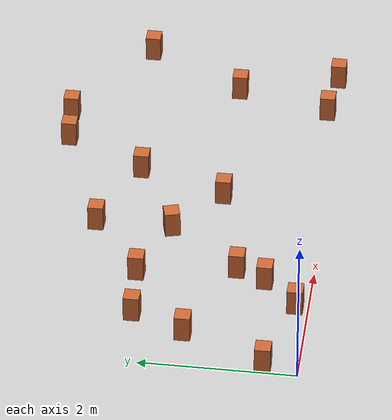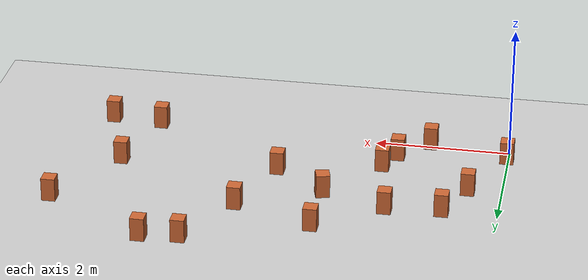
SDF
<sdf version="1.9">
 <world name="default">
  <model name="ground_plane">
   <static>true</static>
   <link name="link">
    <collision name="collision">
     <geometry><plane><normal>0 0 1</normal><size>100 100</size></plane></geometry>
     <surface><friction><ode><mu>100</mu><mu2>50</mu2></ode></friction></surface>
    </collision>
    <visual name="visual">
     <cast_shadows>false</cast_shadows>
     <geometry><plane><normal>0 0 1</normal><size>100 100</size></plane></geometry>
     <material>
      <ambient>0.6 0.6 0.6 1</ambient>
      <diffuse>0.8 0.8 0.8 1</diffuse>
      <specular>0.1 0.1 0.1 1</specular>
     </material>
    </visual>
    <inertial>
     <mass>1</mass>
     <inertia><ixx>1</ixx><ixy>0</ixy><ixz>0</ixz><iyy>1</iyy><iyz>0</iyz><izz>1</izz></inertia>
    </inertial>
   </link>
  </model>
  <model name="wood_cube_10cm_clone_0_clone_1">
   <link name="link">
    <pose>0 0 0.05 0 -0 0</pose>
    <inertial>
     <mass>0.51670000000000005</mass>
     <inertia>
      <ixx>0.00086116700000000003</ixx>
      <ixy>0</ixy>
      <ixz>0</ixz>
      <iyy>0.00086116700000000003</iyy>
      <iyz>0</iyz>
      <izz>0.00086116700000000003</izz>
     </inertia>
    </inertial>
    <collision name="collision">
     <geometry><box><size>0.2 0.2 0.5</size></box></geometry>
     <surface>
      <contact>
       <poissons_ratio>0.34699999999999998</poissons_ratio>
       <elastic_modulus>8800000000</elastic_modulus>
       <ode><kp>100000</kp><kd>100</kd><max_vel>100</max_vel><min_depth>0.001</min_depth></ode>
      </contact>
      <friction>
       <torsional>
        <coefficient>1</coefficient>
        <use_patch_radius>false</use_patch_radius>
        <surface_radius>0.01</surface_radius>
       </torsional>
      </friction>
     </surface>
    </collision>
    <visual name="visual">
     <geometry><box><size>0.2 0.2 0.5</size></box></geometry>
     <material>
      <ambient>0.6 0.3 0.1 1</ambient>
      <diffuse>0.8 0.4 0.2 1</diffuse>
      <specular>0.1 0.1 0.1 1</specular>
     </material>
    </visual>
   </link>
   <pose>0.006606 0.427327 0.14488 -0 -0 0</pose>
   <static>false</static>
  </model>
  <model name="wood_cube_10cm_clone_0_2">
   <link name="link">
    <pose>0 0 0.05 0 -0 0</pose>
    <inertial>
     <mass>0.51670000000000005</mass>
     <inertia>
      <ixx>0.00086116700000000003</ixx>
      <ixy>0</ixy>
      <ixz>0</ixz>
      <iyy>0.00086116700000000003</iyy>
      <iyz>0</iyz>
      <izz>0.00086116700000000003</izz>
     </inertia>
    </inertial>
    <collision name="collision">
     <geometry><box><size>0.2 0.2 0.5</size></box></geometry>
     <surface>
      <contact>
       <poissons_ratio>0.34699999999999998</poissons_ratio>
       <elastic_modulus>8800000000</elastic_modulus>
       <ode><kp>100000</kp><kd>100</kd><max_vel>100</max_vel><min_depth>0.001</min_depth></ode>
      </contact>
      <friction>
       <torsional>
        <coefficient>1</coefficient>
        <use_patch_radius>false</use_patch_radius>
        <surface_radius>0.01</surface_radius>
       </torsional>
      </friction>
     </surface>
    </collision>
    <visual name="visual">
     <geometry><box><size>0.2 0.2 0.5</size></box></geometry>
     <material>
      <ambient>0.6 0.3 0.1 1</ambient>
      <diffuse>0.8 0.4 0.2 1</diffuse>
      <specular>0.1 0.1 0.1 1</specular>
     </material>
    </visual>
   </link>
   <pose>1.16291 0.156002 0.148076 -0 0 0</pose>
   <static>false</static>
  </model>
  <model name="wood_cube_10cm_clone_0_3">
   <link name="link">
    <pose>0 0 0.05 0 -0 0</pose>
    <inertial>
     <mass>0.51670000000000005</mass>
     <inertia>
      <ixx>0.00086116700000000003</ixx>
      <ixy>0</ixy>
      <ixz>0</ixz>
      <iyy>0.00086116700000000003</iyy>
      <iyz>0</iyz>
      <izz>0.00086116700000000003</izz>
     </inertia>
    </inertial>
    <collision name="collision">
     <geometry><box><size>0.2 0.2 0.5</size></box></geometry>
     <surface>
      <contact>
       <poissons_ratio>0.34699999999999998</poissons_ratio>
       <elastic_modulus>8800000000</elastic_modulus>
       <ode><kp>100000</kp><kd>100</kd><max_vel>100</max_vel><min_depth>0.001</min_depth></ode>
      </contact>
      <friction>
       <torsional>
        <coefficient>1</coefficient>
        <use_patch_radius>false</use_patch_radius>
        <surface_radius>0.01</surface_radius>
       </torsional>
      </friction>
     </surface>
    </collision>
    <visual name="visual">
     <geometry><box><size>0.2 0.2 0.5</size></box></geometry>
     <material>
      <ambient>0.6 0.3 0.1 1</ambient>
      <diffuse>0.8 0.4 0.2 1</diffuse>
      <specular>0.1 0.1 0.1 1</specular>
     </material>
    </visual>
   </link>
   <pose>1.78062 0.966917 0.149371 -0 0 0</pose>
   <static>false</static>
  </model>
  <model name="wood_cube_10cm_clone_0_8">
   <link name="link">
    <pose>0 0 0.05 0 -0 0</pose>
    <inertial>
     <mass>0.51670000000000005</mass>
     <inertia>
      <ixx>0.00086116700000000003</ixx>
      <ixy>0</ixy>
      <ixz>0</ixz>
      <iyy>0.00086116700000000003</iyy>
      <iyz>0</iyz>
      <izz>0.00086116700000000003</izz>
     </inertia>
    </inertial>
    <collision name="collision">
     <geometry><box><size>0.2 0.2 0.5</size></box></geometry>
     <surface>
      <contact>
       <poissons_ratio>0.34699999999999998</poissons_ratio>
       <elastic_modulus>8800000000</elastic_modulus>
       <ode><kp>100000</kp><kd>100</kd><max_vel>100</max_vel><min_depth>0.001</min_depth></ode>
      </contact>
      <friction>
       <torsional>
        <coefficient>1</coefficient>
        <use_patch_radius>false</use_patch_radius>
        <surface_radius>0.01</surface_radius>
       </torsional>
      </friction>
     </surface>
    </collision>
    <visual name="visual">
     <geometry><box><size>0.2 0.2 0.5</size></box></geometry>
     <material>
      <ambient>0.6 0.3 0.1 1</ambient>
      <diffuse>0.8 0.4 0.2 1</diffuse>
      <specular>0.1 0.1 0.1 1</specular>
     </material>
    </visual>
   </link>
   <pose>0.474859 1.48445 0.1503 -0 0 -0</pose>
   <static>false</static>
  </model>
  <model name="wood_cube_10cm_clone_0_9">
   <link name="link">
    <pose>0 0 0.05 0 -0 0</pose>
    <inertial>
     <mass>0.51670000000000005</mass>
     <inertia>
      <ixx>0.00086116700000000003</ixx>
      <ixy>0</ixy>
      <ixz>0</ixz>
      <iyy>0.00086116700000000003</iyy>
      <iyz>0</iyz>
      <izz>0.00086116700000000003</izz>
     </inertia>
    </inertial>
    <collision name="collision">
     <geometry><box><size>0.2 0.2 0.5</size></box></geometry>
     <surface>
      <contact>
       <poissons_ratio>0.34699999999999998</poissons_ratio>
       <elastic_modulus>8800000000</elastic_modulus>
       <ode><kp>100000</kp><kd>100</kd><max_vel>100</max_vel><min_depth>0.001</min_depth></ode>
      </contact>
      <friction>
       <torsional>
        <coefficient>1</coefficient>
        <use_patch_radius>false</use_patch_radius>
        <surface_radius>0.01</surface_radius>
       </torsional>
      </friction>
     </surface>
    </collision>
    <visual name="visual">
     <geometry><box><size>0.2 0.2 0.5</size></box></geometry>
     <material>
      <ambient>0.6 0.3 0.1 1</ambient>
      <diffuse>0.8 0.4 0.2 1</diffuse>
      <specular>0.1 0.1 0.1 1</specular>
     </material>
    </visual>
   </link>
   <pose>3.27743 1.32498 0.149735 0 -0 0</pose>
   <static>false</static>
  </model>
  <model name="wood_cube_10cm_clone_0_10">
   <link name="link">
    <pose>0 0 0.05 0 -0 0</pose>
    <inertial>
     <mass>0.51670000000000005</mass>
     <inertia>
      <ixx>0.00086116700000000003</ixx>
      <ixy>0</ixy>
      <ixz>0</ixz>
      <iyy>0.00086116700000000003</iyy>
      <iyz>0</iyz>
      <izz>0.00086116700000000003</izz>
     </inertia>
    </inertial>
    <collision name="collision">
     <geometry><box><size>0.2 0.2 0.5</size></box></geometry>
     <surface>
      <contact>
       <poissons_ratio>0.34699999999999998</poissons_ratio>
       <elastic_modulus>8800000000</elastic_modulus>
       <ode><kp>100000</kp><kd>100</kd><max_vel>100</max_vel><min_depth>0.001</min_depth></ode>
      </contact>
      <friction>
       <torsional>
        <coefficient>1</coefficient>
        <use_patch_radius>false</use_patch_radius>
        <surface_radius>0.01</surface_radius>
       </torsional>
      </friction>
     </surface>
    </collision>
    <visual name="visual">
     <geometry><box><size>0.2 0.2 0.5</size></box></geometry>
     <material>
      <ambient>0.6 0.3 0.1 1</ambient>
      <diffuse>0.8 0.4 0.2 1</diffuse>
      <specular>0.1 0.1 0.1 1</specular>
     </material>
    </visual>
   </link>
   <pose>1.57981 2.22681 0.150357 0 -0 0</pose>
   <static>false</static>
  </model>
  <model name="wood_cube_10cm_clone_0_11">
   <link name="link">
    <pose>0 0 0.05 0 -0 0</pose>
    <inertial>
     <mass>0.51670000000000005</mass>
     <inertia>
      <ixx>0.00086116700000000003</ixx>
      <ixy>0</ixy>
      <ixz>0</ixz>
      <iyy>0.00086116700000000003</iyy>
      <iyz>0</iyz>
      <izz>0.00086116700000000003</izz>
     </inertia>
    </inertial>
    <collision name="collision">
     <geometry><box><size>0.2 0.2 0.5</size></box></geometry>
     <surface>
      <contact>
       <poissons_ratio>0.34699999999999998</poissons_ratio>
       <elastic_modulus>8800000000</elastic_modulus>
       <ode><kp>100000</kp><kd>100</kd><max_vel>100</max_vel><min_depth>0.001</min_depth></ode>
      </contact>
      <friction>
       <torsional>
        <coefficient>1</coefficient>
        <use_patch_radius>false</use_patch_radius>
        <surface_radius>0.01</surface_radius>
       </torsional>
      </friction>
     </surface>
    </collision>
    <visual name="visual">
     <geometry><box><size>0.2 0.2 0.5</size></box></geometry>
     <material>
      <ambient>0.6 0.3 0.1 1</ambient>
      <diffuse>0.8 0.4 0.2 1</diffuse>
      <specular>0.1 0.1 0.1 1</specular>
     </material>
    </visual>
   </link>
   <pose>3.69286 2.46208 0.150403 0 -0 0</pose>
   <static>false</static>
  </model>
  <model name="wood_cube_10cm_clone_0_12">
   <link name="link">
    <pose>0 0 0.05 0 -0 0</pose>
    <inertial>
     <mass>0.51670000000000005</mass>
     <inertia>
      <ixx>0.00086116700000000003</ixx>
      <ixy>0</ixy>
      <ixz>0</ixz>
      <iyy>0.00086116700000000003</iyy>
      <iyz>0</iyz>
      <izz>0.00086116700000000003</izz>
     </inertia>
    </inertial>
    <collision name="collision">
     <geometry><box><size>0.2 0.2 0.5</size></box></geometry>
     <surface>
      <contact>
       <poissons_ratio>0.34699999999999998</poissons_ratio>
       <elastic_modulus>8800000000</elastic_modulus>
       <ode><kp>100000</kp><kd>100</kd><max_vel>100</max_vel><min_depth>0.001</min_depth></ode>
      </contact>
      <friction>
       <torsional>
        <coefficient>1</coefficient>
        <use_patch_radius>false</use_patch_radius>
        <surface_radius>0.01</surface_radius>
       </torsional>
      </friction>
     </surface>
    </collision>
    <visual name="visual">
     <geometry><box><size>0.2 0.2 0.5</size></box></geometry>
     <material>
      <ambient>0.6 0.3 0.1 1</ambient>
      <diffuse>0.8 0.4 0.2 1</diffuse>
      <specular>0.1 0.1 0.1 1</specular>
     </material>
    </visual>
   </link>
   <pose>5.26382 0.167867 0.150353 0 -0 -0</pose>
   <static>false</static>
  </model>
  <model name="wood_cube_10cm_clone_0_14">
   <link name="link">
    <pose>0 0 0.05 0 -0 0</pose>
    <inertial>
     <mass>0.51670000000000005</mass>
     <inertia>
      <ixx>0.00086116700000000003</ixx>
      <ixy>0</ixy>
      <ixz>0</ixz>
      <iyy>0.00086116700000000003</iyy>
      <iyz>0</iyz>
      <izz>0.00086116700000000003</izz>
     </inertia>
    </inertial>
    <collision name="collision">
     <geometry><box><size>0.2 0.2 0.5</size></box></geometry>
     <surface>
      <contact>
       <poissons_ratio>0.34699999999999998</poissons_ratio>
       <elastic_modulus>8800000000</elastic_modulus>
       <ode><kp>100000</kp><kd>100</kd><max_vel>100</max_vel><min_depth>0.001</min_depth></ode>
      </contact>
      <friction>
       <torsional>
        <coefficient>1</coefficient>
        <use_patch_radius>false</use_patch_radius>
        <surface_radius>0.01</surface_radius>
       </torsional>
      </friction>
     </surface>
    </collision>
    <visual name="visual">
     <geometry><box><size>0.2 0.2 0.5</size></box></geometry>
     <material>
      <ambient>0.6 0.3 0.1 1</ambient>
      <diffuse>0.8 0.4 0.2 1</diffuse>
      <specular>0.1 0.1 0.1 1</specular>
     </material>
    </visual>
   </link>
   <pose>5.59319 1.38887 0.150412 0 -0 0</pose>
   <static>false</static>
  </model>
  <model name="wood_cube_10cm_clone_0_2_1">
   <link name="link">
    <pose>0 0 0.05 0 -0 0</pose>
    <inertial>
     <mass>0.51670000000000005</mass>
     <inertia>
      <ixx>0.00086116700000000003</ixx>
      <ixy>0</ixy>
      <ixz>0</ixz>
      <iyy>0.00086116700000000003</iyy>
      <iyz>0</iyz>
      <izz>0.00086116700000000003</izz>
     </inertia>
    </inertial>
    <collision name="collision">
     <geometry><box><size>0.2 0.2 0.5</size></box></geometry>
     <surface>
      <contact>
       <poissons_ratio>0.34699999999999998</poissons_ratio>
       <elastic_modulus>8800000000</elastic_modulus>
       <ode><kp>100000</kp><kd>100</kd><max_vel>100</max_vel><min_depth>0.001</min_depth></ode>
      </contact>
      <friction>
       <torsional>
        <coefficient>1</coefficient>
        <use_patch_radius>false</use_patch_radius>
        <surface_radius>0.01</surface_radius>
       </torsional>
      </friction>
     </surface>
    </collision>
    <visual name="visual">
     <geometry><box><size>0.2 0.2 0.5</size></box></geometry>
     <material>
      <ambient>0.6 0.3 0.1 1</ambient>
      <diffuse>0.8 0.4 0.2 1</diffuse>
      <specular>0.1 0.1 0.1 1</specular>
     </material>
    </visual>
   </link>
   <pose>2.52844 2.88631 0.147743 -0 0 0</pose>
   <static>false</static>
  </model>
  <model name="wood_cube_10cm_clone_0_2_2">
   <link name="link">
    <pose>0 0 0.05 0 -0 0</pose>
    <inertial>
     <mass>0.51670000000000005</mass>
     <inertia>
      <ixx>0.00086116700000000003</ixx>
      <ixy>0</ixy>
      <ixz>0</ixz>
      <iyy>0.00086116700000000003</iyy>
      <iyz>0</iyz>
      <izz>0.00086116700000000003</izz>
     </inertia>
    </inertial>
    <collision name="collision">
     <geometry><box><size>0.2 0.2 0.5</size></box></geometry>
     <surface>
      <contact>
       <poissons_ratio>0.34699999999999998</poissons_ratio>
       <elastic_modulus>8800000000</elastic_modulus>
       <ode><kp>100000</kp><kd>100</kd><max_vel>100</max_vel><min_depth>0.001</min_depth></ode>
      </contact>
      <friction>
       <torsional>
        <coefficient>1</coefficient>
        <use_patch_radius>false</use_patch_radius>
        <surface_radius>0.01</surface_radius>
       </torsional>
      </friction>
     </surface>
    </collision>
    <visual name="visual">
     <geometry><box><size>0.2 0.2 0.5</size></box></geometry>
     <material>
      <ambient>0.6 0.3 0.1 1</ambient>
      <diffuse>0.8 0.4 0.2 1</diffuse>
      <specular>0.1 0.1 0.1 1</specular>
     </material>
    </visual>
   </link>
   <pose>0.775268 2.16579 0.147603 -0 0 -0</pose>
   <static>false</static>
  </model>
  <model name="wood_cube_10cm_clone_0_2_5">
   <link name="link">
    <pose>0 0 0.05 0 -0 0</pose>
    <inertial>
     <mass>0.51670000000000005</mass>
     <inertia>
      <ixx>0.00086116700000000003</ixx>
      <ixy>0</ixy>
      <ixz>0</ixz>
      <iyy>0.00086116700000000003</iyy>
      <iyz>0</iyz>
      <izz>0.00086116700000000003</izz>
     </inertia>
    </inertial>
    <collision name="collision">
     <geometry><box><size>0.2 0.2 0.5</size></box></geometry>
     <surface>
      <contact>
       <poissons_ratio>0.34699999999999998</poissons_ratio>
       <elastic_modulus>8800000000</elastic_modulus>
       <ode><kp>100000</kp><kd>100</kd><max_vel>100</max_vel><min_depth>0.001</min_depth></ode>
      </contact>
      <friction>
       <torsional>
        <coefficient>1</coefficient>
        <use_patch_radius>false</use_patch_radius>
        <surface_radius>0.01</surface_radius>
       </torsional>
      </friction>
     </surface>
    </collision>
    <visual name="visual">
     <geometry><box><size>0.2 0.2 0.5</size></box></geometry>
     <material>
      <ambient>0.6 0.3 0.1 1</ambient>
      <diffuse>0.8 0.4 0.2 1</diffuse>
      <specular>0.1 0.1 0.1 1</specular>
     </material>
    </visual>
   </link>
   <pose>6.34108 2.676 0.147353 0 -0 0</pose>
   <static>false</static>
  </model>
  <model name="wood_cube_10cm_clone_0_2_6">
   <link name="link">
    <pose>0 0 0.05 0 -0 0</pose>
    <inertial>
     <mass>0.51670000000000005</mass>
     <inertia>
      <ixx>0.00086116700000000003</ixx>
      <ixy>0</ixy>
      <ixz>0</ixz>
      <iyy>0.00086116700000000003</iyy>
      <iyz>0</iyz>
      <izz>0.00086116700000000003</izz>
     </inertia>
    </inertial>
    <collision name="collision">
     <geometry><box><size>0.2 0.2 0.5</size></box></geometry>
     <surface>
      <contact>
       <poissons_ratio>0.34699999999999998</poissons_ratio>
       <elastic_modulus>8800000000</elastic_modulus>
       <ode><kp>100000</kp><kd>100</kd><max_vel>100</max_vel><min_depth>0.001</min_depth></ode>
      </contact>
      <friction>
       <torsional>
        <coefficient>1</coefficient>
        <use_patch_radius>false</use_patch_radius>
        <surface_radius>0.01</surface_radius>
       </torsional>
      </friction>
     </surface>
    </collision>
    <visual name="visual">
     <geometry><box><size>0.2 0.2 0.5</size></box></geometry>
     <material>
      <ambient>0.6 0.3 0.1 1</ambient>
      <diffuse>0.8 0.4 0.2 1</diffuse>
      <specular>0.1 0.1 0.1 1</specular>
     </material>
    </visual>
   </link>
   <pose>4.82982 3.57188 0.147757 0 -0 0</pose>
   <static>false</static>
  </model>
  <model name="wood_cube_10cm_clone_0_2_10">
   <link name="link">
    <pose>0 0 0.05 0 -0 0</pose>
    <inertial>
     <mass>0.51670000000000005</mass>
     <inertia>
      <ixx>0.00086116700000000003</ixx>
      <ixy>0</ixy>
      <ixz>0</ixz>
      <iyy>0.00086116700000000003</iyy>
      <iyz>0</iyz>
      <izz>0.00086116700000000003</izz>
     </inertia>
    </inertial>
    <collision name="collision">
     <geometry><box><size>0.2 0.2 0.5</size></box></geometry>
     <surface>
      <contact>
       <poissons_ratio>0.34699999999999998</poissons_ratio>
       <elastic_modulus>8800000000</elastic_modulus>
       <ode><kp>100000</kp><kd>100</kd><max_vel>100</max_vel><min_depth>0.001</min_depth></ode>
      </contact>
      <friction>
       <torsional>
        <coefficient>1</coefficient>
        <use_patch_radius>false</use_patch_radius>
        <surface_radius>0.01</surface_radius>
       </torsional>
      </friction>
     </surface>
    </collision>
    <visual name="visual">
     <geometry><box><size>0.2 0.2 0.5</size></box></geometry>
     <material>
      <ambient>0.6 0.3 0.1 1</ambient>
      <diffuse>0.8 0.4 0.2 1</diffuse>
      <specular>0.1 0.1 0.1 1</specular>
     </material>
    </visual>
   </link>
   <pose>1.60003 0.588959 0.147613 0 -0 0</pose>
   <static>false</static>
  </model>
  <model name="wood_cube_10cm_clone_0_2_11">
   <link name="link">
    <pose>0 0 0.05 0 -0 0</pose>
    <inertial>
     <mass>0.51670000000000005</mass>
     <inertia>
      <ixx>0.00086116700000000003</ixx>
      <ixy>0</ixy>
      <ixz>0</ixz>
      <iyy>0.00086116700000000003</iyy>
      <iyz>0</iyz>
      <izz>0.00086116700000000003</izz>
     </inertia>
    </inertial>
    <collision name="collision">
     <geometry><box><size>0.2 0.2 0.5</size></box></geometry>
     <surface>
      <contact>
       <poissons_ratio>0.34699999999999998</poissons_ratio>
       <elastic_modulus>8800000000</elastic_modulus>
       <ode><kp>100000</kp><kd>100</kd><max_vel>100</max_vel><min_depth>0.001</min_depth></ode>
      </contact>
      <friction>
       <torsional>
        <coefficient>1</coefficient>
        <use_patch_radius>false</use_patch_radius>
        <surface_radius>0.01</surface_radius>
       </torsional>
      </friction>
     </surface>
    </collision>
    <visual name="visual">
     <geometry><box><size>0.2 0.2 0.5</size></box></geometry>
     <material>
      <ambient>0.6 0.3 0.1 1</ambient>
      <diffuse>0.8 0.4 0.2 1</diffuse>
      <specular>0.1 0.1 0.1 1</specular>
     </material>
    </visual>
   </link>
   <pose>2.52509 1.90267 0.152878 -0.018697 -0.02059 0.265241</pose>
   <static>false</static>
  </model>
  <model name="wood_cube_10cm_clone_0_2_13">
   <link name="link">
    <pose>0 0 0.05 0 -0 0</pose>
    <inertial>
     <mass>0.51670000000000005</mass>
     <inertia>
      <ixx>0.00086116700000000003</ixx>
      <ixy>0</ixy>
      <ixz>0</ixz>
      <iyy>0.00086116700000000003</iyy>
      <iyz>0</iyz>
      <izz>0.00086116700000000003</izz>
     </inertia>
    </inertial>
    <collision name="collision">
     <geometry><box><size>0.2 0.2 0.5</size></box></geometry>
     <surface>
      <contact>
       <poissons_ratio>0.34699999999999998</poissons_ratio>
       <elastic_modulus>8800000000</elastic_modulus>
       <ode><kp>100000</kp><kd>100</kd><max_vel>100</max_vel><min_depth>0.001</min_depth></ode>
      </contact>
      <friction>
       <torsional>
        <coefficient>1</coefficient>
        <use_patch_radius>false</use_patch_radius>
        <surface_radius>0.01</surface_radius>
       </torsional>
      </friction>
     </surface>
    </collision>
    <visual name="visual">
     <geometry><box><size>0.2 0.2 0.5</size></box></geometry>
     <material>
      <ambient>0.6 0.3 0.1 1</ambient>
      <diffuse>0.8 0.4 0.2 1</diffuse>
      <specular>0.1 0.1 0.1 1</specular>
     </material>
    </visual>
   </link>
   <pose>4.27488 3.51461 0.146911 -0 -0 -0</pose>
   <static>false</static>
  </model>
  <model name="ground_plane_0_clone_1">
   <static>true</static>
   <link name="link">
    <collision name="collision">
     <geometry><plane><normal>0 0 1</normal><size>100 100</size></plane></geometry>
     <surface><friction><ode><mu>100</mu><mu2>50</mu2></ode></friction></surface>
    </collision>
    <visual name="visual">
     <cast_shadows>false</cast_shadows>
     <geometry><plane><normal>0 0 1</normal><size>100 100</size></plane></geometry>
     <material>
      <ambient>0.6 0.6 0.6 1</ambient>
      <diffuse>0.8 0.8 0.8 1</diffuse>
      <specular>0.1 0.1 0.1 1</specular>
     </material>
    </visual>
   </link>
   <pose>1.41894 0.154469 0.05 0 -0 0</pose>
  </model>
  <model name="wood_cube_10cm_clone_0_2_14">
   <link name="link">
    <pose>0 0 0.05 0 -0 0</pose>
    <inertial>
     <mass>0.51670000000000005</mass>
     <inertia>
      <ixx>0.00086116700000000003</ixx>
      <ixy>0</ixy>
      <ixz>0</ixz>
      <iyy>0.00086116700000000003</iyy>
      <iyz>0</iyz>
      <izz>0.00086116700000000003</izz>
     </inertia>
    </inertial>
    <collision name="collision">
     <geometry><box><size>0.2 0.2 0.5</size></box></geometry>
     <surface>
      <contact>
       <poissons_ratio>0.34699999999999998</poissons_ratio>
       <elastic_modulus>8800000000</elastic_modulus>
       <ode><kp>100000</kp><kd>100</kd><max_vel>100</max_vel><min_depth>0.001</min_depth></ode>
      </contact>
      <friction>
       <torsional>
        <coefficient>1</coefficient>
        <use_patch_radius>false</use_patch_radius>
        <surface_radius>0.01</surface_radius>
       </torsional>
      </friction>
     </surface>
    </collision>
    <visual name="visual">
     <geometry><box><size>0.2 0.2 0.5</size></box></geometry>
     <material>
      <ambient>0.6 0.3 0.1 1</ambient>
      <diffuse>0.8 0.4 0.2 1</diffuse>
      <specular>0.1 0.1 0.1 1</specular>
     </material>
    </visual>
   </link>
   <pose>6.01488 0.095193 0.147779 0 -0 -0</pose>
   <static>false</static>
  </model>
 </world>
</sdf>
